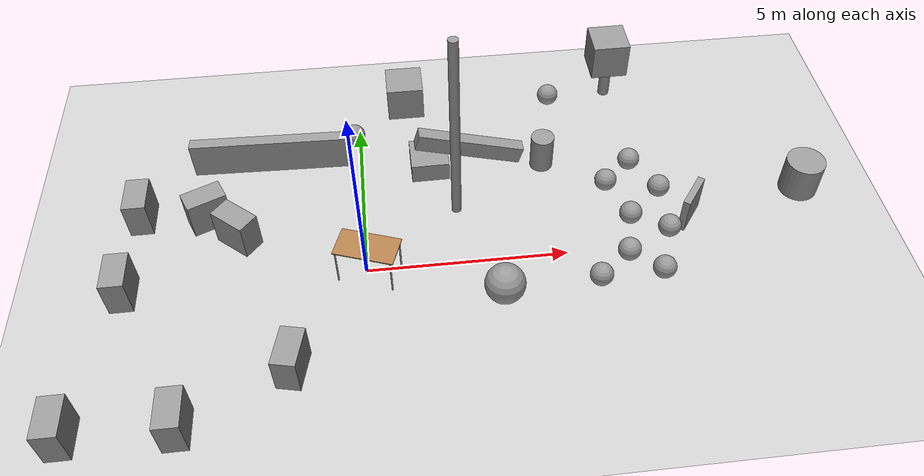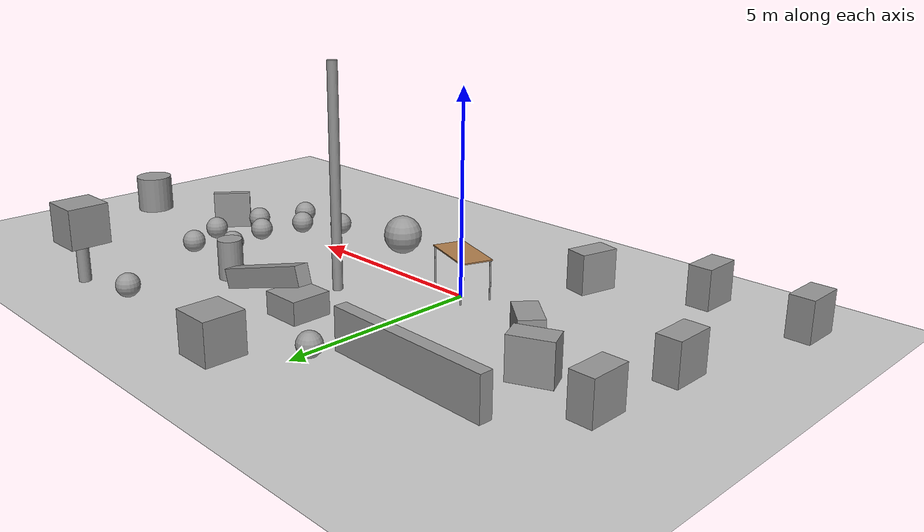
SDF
<sdf version="1.7">
 <world name="default">
  <model name="ground_plane">
   <static>1</static>
   <link name="link">
    <collision name="collision">
     <geometry><plane><normal>0 0 1</normal><size>100 100</size></plane></geometry>
     <surface>
      <contact><collide_bitmask>65535</collide_bitmask></contact>
      <friction><ode><mu>100</mu><mu2>50</mu2></ode></friction>
     </surface>
    </collision>
    <visual name="visual">
     <cast_shadows>0</cast_shadows>
     <geometry><plane><normal>0 0 1</normal><size>100 100</size></plane></geometry>
     <material>
      <script><uri>file://media/materials/scripts/gazebo.material</uri><name>Gazebo/Grey</name></script>
     </material>
    </visual>
   </link>
  </model>
  <model name="unit_sphere">
   <model name="table">
    <static>1</static>
    <link name="link">
     <collision name="surface">
      <pose>0 0 1 0 -0 0</pose>
      <geometry><box><size>1.5 0.8 0.03</size></box></geometry>
      <surface><friction><ode><mu>0.6</mu><mu2>0.6</mu2></ode></friction></surface>
     </collision>
     <visual name="visual1">
      <pose>0 0 1 0 -0 0</pose>
      <geometry><box><size>1.5 0.8 0.03</size></box></geometry>
      <material>
       <script><uri>file://media/materials/scripts/gazebo.material</uri><name>Gazebo/Wood</name></script>
      </material>
     </visual>
     <collision name="front_left_leg">
      <pose>0.68 0.38 0.5 0 -0 0</pose>
      <geometry><cylinder><radius>0.02</radius><length>1</length></cylinder></geometry>
     </collision>
     <visual name="front_left_leg">
      <pose>0.68 0.38 0.5 0 -0 0</pose>
      <geometry><cylinder><radius>0.02</radius><length>1</length></cylinder></geometry>
      <material>
       <script><uri>file://media/materials/scripts/gazebo.material</uri><name>Gazebo/Grey</name></script>
      </material>
     </visual>
     <collision name="front_right_leg">
      <pose>0.68 -0.38 0.5 0 -0 0</pose>
      <geometry><cylinder><radius>0.02</radius><length>1</length></cylinder></geometry>
     </collision>
     <visual name="front_right_leg">
      <pose>0.68 -0.38 0.5 0 -0 0</pose>
      <geometry><cylinder><radius>0.02</radius><length>1</length></cylinder></geometry>
      <material>
       <script><uri>file://media/materials/scripts/gazebo.material</uri><name>Gazebo/Grey</name></script>
      </material>
     </visual>
     <collision name="back_right_leg">
      <pose>-0.68 -0.38 0.5 0 -0 0</pose>
      <geometry><cylinder><radius>0.02</radius><length>1</length></cylinder></geometry>
     </collision>
     <visual name="back_right_leg">
      <pose>-0.68 -0.38 0.5 0 -0 0</pose>
      <geometry><cylinder><radius>0.02</radius><length>1</length></cylinder></geometry>
      <material>
       <script><uri>file://media/materials/scripts/gazebo.material</uri><name>Gazebo/Grey</name></script>
      </material>
     </visual>
     <collision name="back_left_leg">
      <pose>-0.68 0.38 0.5 0 -0 0</pose>
      <geometry><cylinder><radius>0.02</radius><length>1</length></cylinder></geometry>
     </collision>
     <visual name="back_left_leg">
      <pose>-0.68 0.38 0.5 0 -0 0</pose>
      <geometry><cylinder><radius>0.02</radius><length>1</length></cylinder></geometry>
      <material>
       <script><uri>file://media/materials/scripts/gazebo.material</uri><name>Gazebo/Grey</name></script>
      </material>
     </visual>
    </link>
    <pose>-2.51477 -2.25186 -0.442404 0 -0 0</pose>
   </model>
   <static>0</static>
   <pose>3.20141 1.17795 0.5 0 0 -0.34091</pose>
  </model>
  <model name="unit_sphere_0">
   <pose>5.64423 -0.973907 0.291197 0 -0 0</pose>
   <link name="link">
    <inertial>
     <mass>1</mass>
     <inertia><ixx>0.1</ixx><ixy>0</ixy><ixz>0</ixz><iyy>0.1</iyy><iyz>0</iyz><izz>0.1</izz></inertia>
    </inertial>
    <collision name="collision"><geometry><sphere><radius>0.291197</radius></sphere></geometry></collision>
    <visual name="visual">
     <geometry><sphere><radius>0.291197</radius></sphere></geometry>
     <material>
      <script><name>Gazebo/Grey</name><uri>file://media/materials/scripts/gazebo.material</uri></script>
     </material>
    </visual>
   </link>
  </model>
  <model name="unit_sphere_0_clone">
   <pose>-0.150809 4.58878 0.291197 0 -0 0</pose>
   <link name="link">
    <inertial>
     <mass>1</mass>
     <inertia><ixx>0.1</ixx><ixy>0</ixy><ixz>0</ixz><iyy>0.1</iyy><iyz>0</iyz><izz>0.1</izz></inertia>
    </inertial>
    <collision name="collision"><geometry><sphere><radius>0.291197</radius></sphere></geometry></collision>
    <visual name="visual">
     <geometry><sphere><radius>0.291197</radius></sphere></geometry>
     <material>
      <script><name>Gazebo/Grey</name><uri>file://media/materials/scripts/gazebo.material</uri></script>
     </material>
    </visual>
   </link>
  </model>
  <model name="unit_sphere_0_clone_0">
   <pose>7.21686 -0.927743 0.291197 0 -0 0</pose>
   <link name="link">
    <inertial>
     <mass>1</mass>
     <inertia><ixx>0.1</ixx><ixy>0</ixy><ixz>0</ixz><iyy>0.1</iyy><iyz>0</iyz><izz>0.1</izz></inertia>
    </inertial>
    <collision name="collision"><geometry><sphere><radius>0.291197</radius></sphere></geometry></collision>
    <visual name="visual">
     <geometry><sphere><radius>0.291197</radius></sphere></geometry>
     <material>
      <script><name>Gazebo/Grey</name><uri>file://media/materials/scripts/gazebo.material</uri></script>
     </material>
    </visual>
   </link>
  </model>
  <model name="unit_sphere_0_clone_1">
   <pose>6.38233 2.11697 0.291197 0 -0 0</pose>
   <link name="link">
    <inertial>
     <mass>1</mass>
     <inertia><ixx>0.1</ixx><ixy>0</ixy><ixz>0</ixz><iyy>0.1</iyy><iyz>0</iyz><izz>0.1</izz></inertia>
    </inertial>
    <collision name="collision"><geometry><sphere><radius>0.291197</radius></sphere></geometry></collision>
    <visual name="visual">
     <geometry><sphere><radius>0.291197</radius></sphere></geometry>
     <material>
      <script><name>Gazebo/Grey</name><uri>file://media/materials/scripts/gazebo.material</uri></script>
     </material>
    </visual>
   </link>
  </model>
  <model name="unit_sphere_0_clone_2">
   <pose>7.72105 1.7438 0.291197 0 -0 0</pose>
   <link name="link">
    <inertial>
     <mass>1</mass>
     <inertia><ixx>0.1</ixx><ixy>0</ixy><ixz>0</ixz><iyy>0.1</iyy><iyz>0</iyz><izz>0.1</izz></inertia>
    </inertial>
    <collision name="collision"><geometry><sphere><radius>0.291197</radius></sphere></geometry></collision>
    <visual name="visual">
     <geometry><sphere><radius>0.291197</radius></sphere></geometry>
     <material>
      <script><name>Gazebo/Grey</name><uri>file://media/materials/scripts/gazebo.material</uri></script>
     </material>
    </visual>
   </link>
  </model>
  <model name="unit_sphere_0_clone_3">
   <pose>6.78573 0.901245 0.291197 0 -0 0</pose>
   <link name="link">
    <inertial>
     <mass>1</mass>
     <inertia><ixx>0.1</ixx><ixy>0</ixy><ixz>0</ixz><iyy>0.1</iyy><iyz>0</iyz><izz>0.1</izz></inertia>
    </inertial>
    <collision name="collision"><geometry><sphere><radius>0.291197</radius></sphere></geometry></collision>
    <visual name="visual">
     <geometry><sphere><radius>0.291197</radius></sphere></geometry>
     <material>
      <script><name>Gazebo/Grey</name><uri>file://media/materials/scripts/gazebo.material</uri></script>
     </material>
    </visual>
   </link>
  </model>
  <model name="unit_sphere_0_clone_4">
   <pose>6.49285 -0.279279 0.291197 0 -0 0</pose>
   <link name="link">
    <inertial>
     <mass>1</mass>
     <inertia><ixx>0.1</ixx><ixy>0</ixy><ixz>0</ixz><iyy>0.1</iyy><iyz>0</iyz><izz>0.1</izz></inertia>
    </inertial>
    <collision name="collision"><geometry><sphere><radius>0.291197</radius></sphere></geometry></collision>
    <visual name="visual">
     <geometry><sphere><radius>0.291197</radius></sphere></geometry>
     <material>
      <script><name>Gazebo/Grey</name><uri>file://media/materials/scripts/gazebo.material</uri></script>
     </material>
    </visual>
   </link>
  </model>
  <model name="unit_sphere_0_clone_5">
   <pose>7.67013 0.358686 0.291197 0.010448 -0.009913 -0.012454</pose>
   <link name="link">
    <inertial>
     <mass>1</mass>
     <inertia><ixx>0.1</ixx><ixy>0</ixy><ixz>0</ixz><iyy>0.1</iyy><iyz>0</iyz><izz>0.1</izz></inertia>
    </inertial>
    <collision name="collision"><geometry><sphere><radius>0.291197</radius></sphere></geometry></collision>
    <visual name="visual">
     <geometry><sphere><radius>0.291197</radius></sphere></geometry>
     <material>
      <script><name>Gazebo/Grey</name><uri>file://media/materials/scripts/gazebo.material</uri></script>
     </material>
    </visual>
   </link>
  </model>
  <model name="unit_sphere_0_clone_6">
   <pose>7.15894 2.81011 0.291197 0 -0 0</pose>
   <link name="link">
    <inertial>
     <mass>1</mass>
     <inertia><ixx>0.1</ixx><ixy>0</ixy><ixz>0</ixz><iyy>0.1</iyy><iyz>0</iyz><izz>0.1</izz></inertia>
    </inertial>
    <collision name="collision"><geometry><sphere><radius>0.291197</radius></sphere></geometry></collision>
    <visual name="visual">
     <geometry><sphere><radius>0.291197</radius></sphere></geometry>
     <material>
      <script><name>Gazebo/Grey</name><uri>file://media/materials/scripts/gazebo.material</uri></script>
     </material>
    </visual>
   </link>
  </model>
  <model name="unit_cylinder">
   <pose>11.4813 1.52439 0.499992 -3e-06 2e-06 0</pose>
   <link name="link">
    <inertial>
     <mass>1</mass>
     <inertia><ixx>0.145833</ixx><ixy>0</ixy><ixz>0</ixz><iyy>0.145833</iyy><iyz>0</iyz><izz>0.125</izz></inertia>
    </inertial>
    <collision name="collision">
     <geometry><cylinder><radius>0.5</radius><length>1</length></cylinder></geometry>
    </collision>
    <visual name="visual">
     <geometry><cylinder><radius>0.5</radius><length>1</length></cylinder></geometry>
     <material>
      <script><name>Gazebo/Grey</name><uri>file://media/materials/scripts/gazebo.material</uri></script>
     </material>
    </visual>
   </link>
  </model>
  <model name="unit_cylinder_0">
   <pose>2.39471 1.78531 2.74894 0 0 -0.009827</pose>
   <link name="link">
    <inertial>
     <mass>1</mass>
     <inertia><ixx>0.145833</ixx><ixy>0</ixy><ixz>0</ixz><iyy>0.145833</iyy><iyz>0</iyz><izz>0.125</izz></inertia>
    </inertial>
    <collision name="collision">
     <geometry><cylinder><radius>0.124922</radius><length>5.4979</length></cylinder></geometry>
    </collision>
    <visual name="visual">
     <geometry><cylinder><radius>0.124922</radius><length>5.4979</length></cylinder></geometry>
     <material>
      <script><name>Gazebo/Grey</name><uri>file://media/materials/scripts/gazebo.material</uri></script>
     </material>
    </visual>
   </link>
  </model>
  <model name="unit_cylinder_1">
   <pose>4.84393 3.17739 0.499998 -0 -0 -0</pose>
   <link name="link">
    <inertial>
     <mass>1</mass>
     <inertia><ixx>0.145833</ixx><ixy>0</ixy><ixz>0</ixz><iyy>0.145833</iyy><iyz>0</iyz><izz>0.125</izz></inertia>
    </inertial>
    <collision name="collision">
     <geometry><cylinder><radius>0.306051</radius><length>1</length></cylinder></geometry>
    </collision>
    <visual name="visual">
     <geometry><cylinder><radius>0.306051</radius><length>1</length></cylinder></geometry>
     <material>
      <script><name>Gazebo/Grey</name><uri>file://media/materials/scripts/gazebo.material</uri></script>
     </material>
    </visual>
   </link>
  </model>
  <model name="unit_box_0">
   <pose>-2.3483 3.91051 0.49908 -1.3e-05 0.000442 -0.028332</pose>
   <link name="link">
    <inertial>
     <mass>1</mass>
     <inertia>
      <ixx>0.166667</ixx>
      <ixy>0</ixy>
      <ixz>0</ixz>
      <iyy>0.166667</iyy>
      <iyz>0</iyz>
      <izz>0.166667</izz>
     </inertia>
    </inertial>
    <collision name="collision"><geometry><box><size>4.18589 0.318412 1</size></box></geometry></collision>
    <visual name="visual">
     <geometry><box><size>4.18589 0.318412 1</size></box></geometry>
     <material>
      <script><name>Gazebo/Grey</name><uri>file://media/materials/scripts/gazebo.material</uri></script>
     </material>
    </visual>
   </link>
  </model>
  <model name="unit_box_1">
   <pose>1.33301 5.92734 0.499995 1e-05 -0 0</pose>
   <link name="link">
    <inertial>
     <mass>1</mass>
     <inertia>
      <ixx>0.166667</ixx>
      <ixy>0</ixy>
      <ixz>0</ixz>
      <iyy>0.166667</iyy>
      <iyz>0</iyz>
      <izz>0.166667</izz>
     </inertia>
    </inertial>
    <collision name="collision"><geometry><box><size>1 1 1</size></box></geometry></collision>
    <visual name="visual">
     <geometry><box><size>1 1 1</size></box></geometry>
     <material>
      <script><name>Gazebo/Grey</name><uri>file://media/materials/scripts/gazebo.material</uri></script>
     </material>
    </visual>
   </link>
  </model>
  <model name="unit_sphere_1">
   <pose>3.25967 -1.14554 0.5 0 -0 0</pose>
   <link name="link">
    <inertial>
     <mass>1</mass>
     <inertia><ixx>0.1</ixx><ixy>0</ixy><ixz>0</ixz><iyy>0.1</iyy><iyz>0</iyz><izz>0.1</izz></inertia>
    </inertial>
    <collision name="collision"><geometry><sphere><radius>0.5</radius></sphere></geometry></collision>
    <visual name="visual">
     <geometry><sphere><radius>0.5</radius></sphere></geometry>
     <material>
      <script><name>Gazebo/Grey</name><uri>file://media/materials/scripts/gazebo.material</uri></script>
     </material>
    </visual>
   </link>
  </model>
  <model name="unit_box_2">
   <pose>1.8193 3.39264 0.278134 0 -0 0.009855</pose>
   <link name="link">
    <inertial>
     <mass>1</mass>
     <inertia>
      <ixx>0.166667</ixx>
      <ixy>0</ixy>
      <ixz>0</ixz>
      <iyy>0.166667</iyy>
      <iyz>0</iyz>
      <izz>0.166667</izz>
     </inertia>
    </inertial>
    <collision name="collision"><geometry><box><size>1 1 0.556267</size></box></geometry></collision>
    <visual name="visual">
     <geometry><box><size>1 1 0.556267</size></box></geometry>
     <material>
      <script><name>Gazebo/Grey</name><uri>file://media/materials/scripts/gazebo.material</uri></script>
     </material>
    </visual>
   </link>
  </model>
  <model name="unit_box_3">
   <pose>2.91177 3.46459 0.633774 -2e-06 -1.28909 0.009651</pose>
   <link name="link">
    <inertial>
     <mass>1</mass>
     <inertia>
      <ixx>0.166667</ixx>
      <ixy>0</ixy>
      <ixz>0</ixz>
      <iyy>0.166667</iyy>
      <iyz>0</iyz>
      <izz>0.166667</izz>
     </inertia>
    </inertial>
    <collision name="collision"><geometry><box><size>0.478657 0.355153 2.90561</size></box></geometry></collision>
    <visual name="visual">
     <geometry><box><size>0.478657 0.355153 2.90561</size></box></geometry>
     <material>
      <script><name>Gazebo/Grey</name><uri>file://media/materials/scripts/gazebo.material</uri></script>
     </material>
    </visual>
   </link>
  </model>
  <model name="unit_box_4">
   <pose>8.31013 0.830158 0.5 0 1e-06 -0.644266</pose>
   <link name="link">
    <inertial>
     <mass>1</mass>
     <inertia>
      <ixx>0.166667</ixx>
      <ixy>0</ixy>
      <ixz>0</ixz>
      <iyy>0.166667</iyy>
      <iyz>0</iyz>
      <izz>0.166667</izz>
     </inertia>
    </inertial>
    <collision name="collision"><geometry><box><size>0.179109 1 1</size></box></geometry></collision>
    <visual name="visual">
     <geometry><box><size>0.179109 1 1</size></box></geometry>
     <material>
      <script><name>Gazebo/Grey</name><uri>file://media/materials/scripts/gazebo.material</uri></script>
     </material>
    </visual>
   </link>
  </model>
  <model name="unit_sphere_0_clone_3_clone">
   <pose>5.42517 5.64532 0.291197 0 -0 0</pose>
   <link name="link">
    <inertial>
     <mass>1</mass>
     <inertia><ixx>0.1</ixx><ixy>0</ixy><ixz>0</ixz><iyy>0.1</iyy><iyz>0</iyz><izz>0.1</izz></inertia>
    </inertial>
    <collision name="collision"><geometry><sphere><radius>0.291197</radius></sphere></geometry></collision>
    <visual name="visual">
     <geometry><sphere><radius>0.291197</radius></sphere></geometry>
     <material>
      <script><name>Gazebo/Grey</name><uri>file://media/materials/scripts/gazebo.material</uri></script>
     </material>
    </visual>
   </link>
  </model>
  <model name="unit_box_5">
   <pose>7.0996 5.89333 1.49999 2.7e-05 1.3e-05 0.00609</pose>
   <link name="link">
    <inertial>
     <mass>1</mass>
     <inertia>
      <ixx>0.166667</ixx>
      <ixy>0</ixy>
      <ixz>0</ixz>
      <iyy>0.166667</iyy>
      <iyz>0</iyz>
      <izz>0.166667</izz>
     </inertia>
    </inertial>
    <collision name="collision"><geometry><box><size>1 1 1</size></box></geometry></collision>
    <visual name="visual">
     <geometry><box><size>1 1 1</size></box></geometry>
     <material>
      <script><name>Gazebo/Grey</name><uri>file://media/materials/scripts/gazebo.material</uri></script>
     </material>
    </visual>
   </link>
  </model>
  <model name="unit_cylinder_2">
   <pose>7.14088 5.90356 0.499992 1.3e-05 -1.5e-05 0.005249</pose>
   <link name="link">
    <inertial>
     <mass>1</mass>
     <inertia><ixx>0.145833</ixx><ixy>0</ixy><ixz>0</ixz><iyy>0.145833</iyy><iyz>0</iyz><izz>0.125</izz></inertia>
    </inertial>
    <collision name="collision">
     <geometry><cylinder><radius>0.15417</radius><length>1</length></cylinder></geometry>
    </collision>
    <visual name="visual">
     <geometry><cylinder><radius>0.15417</radius><length>1</length></cylinder></geometry>
     <material>
      <script><name>Gazebo/Grey</name><uri>file://media/materials/scripts/gazebo.material</uri></script>
     </material>
    </visual>
   </link>
  </model>
  <model name="unit_box_6">
   <pose>-1.75459 -2.65597 0.5 0 0 -0.225815</pose>
   <link name="link">
    <inertial>
     <mass>1</mass>
     <inertia>
      <ixx>0.166667</ixx>
      <ixy>0</ixy>
      <ixz>0</ixz>
      <iyy>0.166667</iyy>
      <iyz>0</iyz>
      <izz>0.166667</izz>
     </inertia>
    </inertial>
    <collision name="collision"><geometry><box><size>0.577513 1 1</size></box></geometry></collision>
    <visual name="visual">
     <geometry><box><size>0.577513 1 1</size></box></geometry>
     <material>
      <script><name>Gazebo/Grey</name><uri>file://media/materials/scripts/gazebo.material</uri></script>
     </material>
    </visual>
   </link>
  </model>
  <model name="unit_box_6_clone">
   <pose>-3.14593 1.33349 0.5 0 -0 0.860704</pose>
   <link name="link">
    <inertial>
     <mass>1</mass>
     <inertia>
      <ixx>0.166667</ixx>
      <ixy>0</ixy>
      <ixz>0</ixz>
      <iyy>0.166667</iyy>
      <iyz>0</iyz>
      <izz>0.166667</izz>
     </inertia>
    </inertial>
    <collision name="collision"><geometry><box><size>0.577514 1 1</size></box></geometry></collision>
    <visual name="visual">
     <geometry><box><size>0.577514 1 1</size></box></geometry>
     <material>
      <script><name>Gazebo/Grey</name><uri>file://media/materials/scripts/gazebo.material</uri></script>
     </material>
    </visual>
   </link>
  </model>
  <model name="unit_box_6_clone_0">
   <pose>-4.2018 -3.8862 0.5 0 -0 0</pose>
   <link name="link">
    <inertial>
     <mass>1</mass>
     <inertia>
      <ixx>0.166667</ixx>
      <ixy>0</ixy>
      <ixz>0</ixz>
      <iyy>0.166667</iyy>
      <iyz>0</iyz>
      <izz>0.166667</izz>
     </inertia>
    </inertial>
    <collision name="collision"><geometry><box><size>0.577514 1 1</size></box></geometry></collision>
    <visual name="visual">
     <geometry><box><size>0.577514 1 1</size></box></geometry>
     <material>
      <script><name>Gazebo/Grey</name><uri>file://media/materials/scripts/gazebo.material</uri></script>
     </material>
    </visual>
   </link>
  </model>
  <model name="unit_box_6_clone_1">
   <pose>-5.83034 -0.07993 0.5 0 -0 -1.2e-05</pose>
   <link name="link">
    <inertial>
     <mass>1</mass>
     <inertia>
      <ixx>0.166667</ixx>
      <ixy>0</ixy>
      <ixz>0</ixz>
      <iyy>0.166667</iyy>
      <iyz>0</iyz>
      <izz>0.166667</izz>
     </inertia>
    </inertial>
    <collision name="collision"><geometry><box><size>0.577514 1 1</size></box></geometry></collision>
    <visual name="visual">
     <geometry><box><size>0.577514 1 1</size></box></geometry>
     <material>
      <script><name>Gazebo/Grey</name><uri>file://media/materials/scripts/gazebo.material</uri></script>
     </material>
    </visual>
   </link>
  </model>
  <model name="unit_box_6_clone_2">
   <pose>-5.62592 2.32906 0.5 -0 -0 -4e-06</pose>
   <link name="link">
    <inertial>
     <mass>1</mass>
     <inertia>
      <ixx>0.166667</ixx>
      <ixy>0</ixy>
      <ixz>0</ixz>
      <iyy>0.166667</iyy>
      <iyz>0</iyz>
      <izz>0.166667</izz>
     </inertia>
    </inertial>
    <collision name="collision"><geometry><box><size>0.577514 1 1</size></box></geometry></collision>
    <visual name="visual">
     <geometry><box><size>0.577514 1 1</size></box></geometry>
     <material>
      <script><name>Gazebo/Grey</name><uri>file://media/materials/scripts/gazebo.material</uri></script>
     </material>
    </visual>
   </link>
  </model>
  <model name="unit_box_6_clone_3">
   <pose>-6.6354 -3.8223 0.5 0 -1e-06 -9e-06</pose>
   <link name="link">
    <inertial>
     <mass>1</mass>
     <inertia>
      <ixx>0.166667</ixx>
      <ixy>0</ixy>
      <ixz>0</ixz>
      <iyy>0.166667</iyy>
      <iyz>0</iyz>
      <izz>0.166667</izz>
     </inertia>
    </inertial>
    <collision name="collision"><geometry><box><size>0.577514 1 1</size></box></geometry></collision>
    <visual name="visual">
     <geometry><box><size>0.577514 1 1</size></box></geometry>
     <material>
      <script><name>Gazebo/Grey</name><uri>file://media/materials/scripts/gazebo.material</uri></script>
     </material>
    </visual>
   </link>
  </model>
  <model name="unit_box_6_clone_4">
   <pose>-3.93866 2.08175 0.5 0 0 -1.15569</pose>
   <link name="link">
    <inertial>
     <mass>1</mass>
     <inertia>
      <ixx>0.166667</ixx>
      <ixy>0</ixy>
      <ixz>0</ixz>
      <iyy>0.166667</iyy>
      <iyz>0</iyz>
      <izz>0.166667</izz>
     </inertia>
    </inertial>
    <collision name="collision"><geometry><box><size>0.577514 1 1</size></box></geometry></collision>
    <visual name="visual">
     <geometry><box><size>0.577514 1 1</size></box></geometry>
     <material>
      <script><name>Gazebo/Grey</name><uri>file://media/materials/scripts/gazebo.material</uri></script>
     </material>
    </visual>
   </link>
  </model>
 </world>
</sdf>
